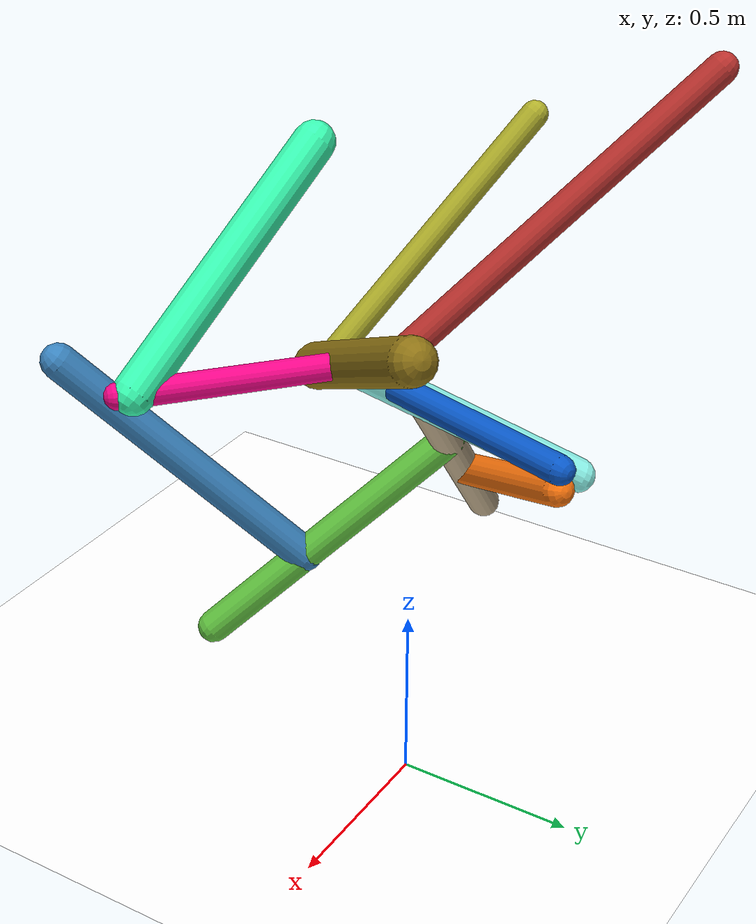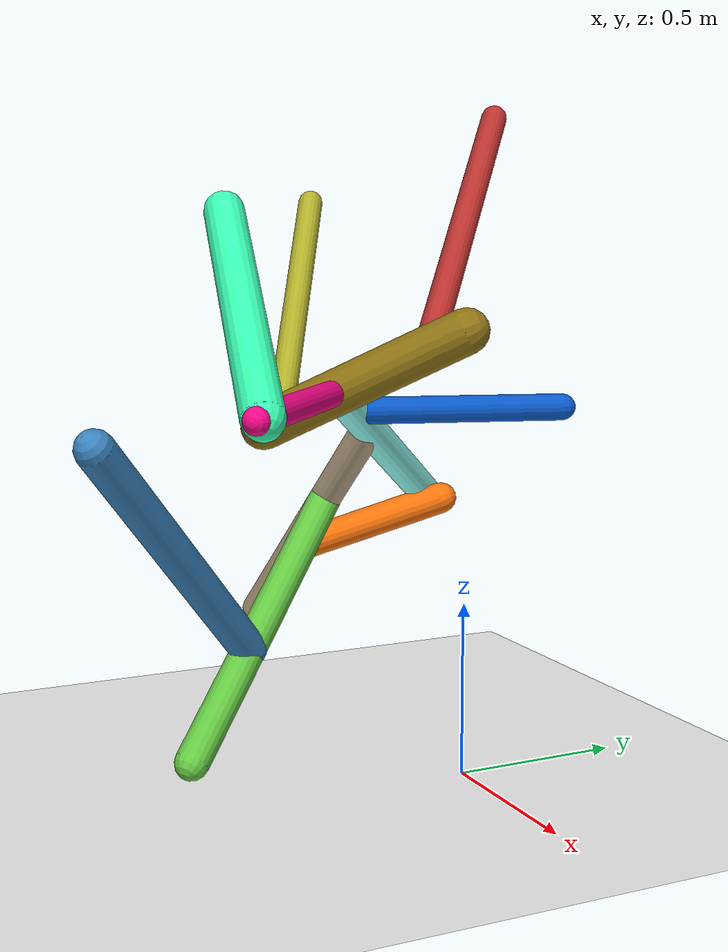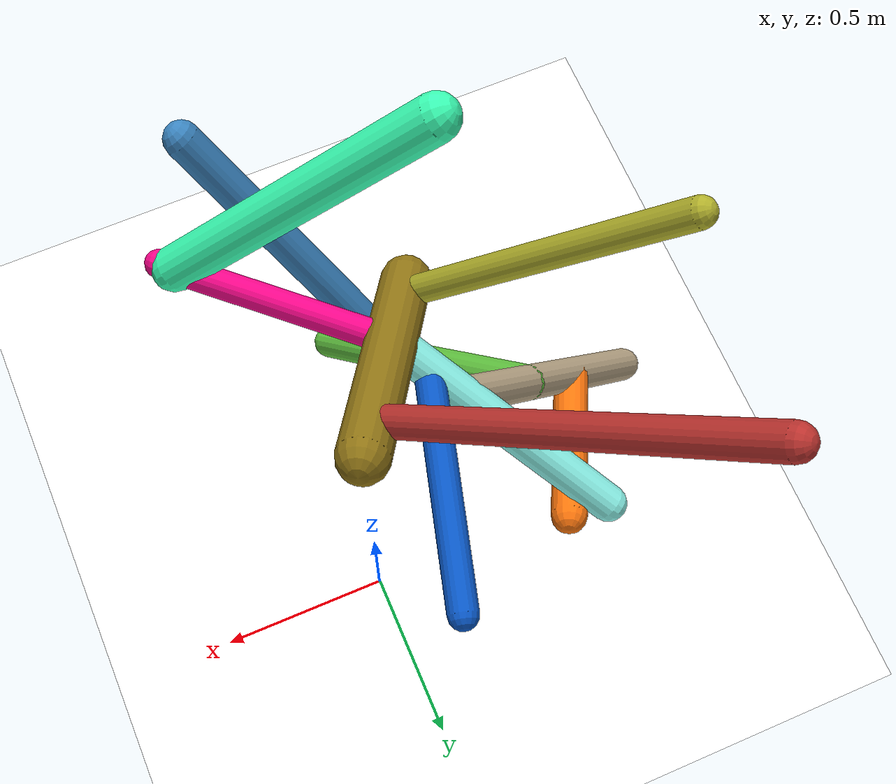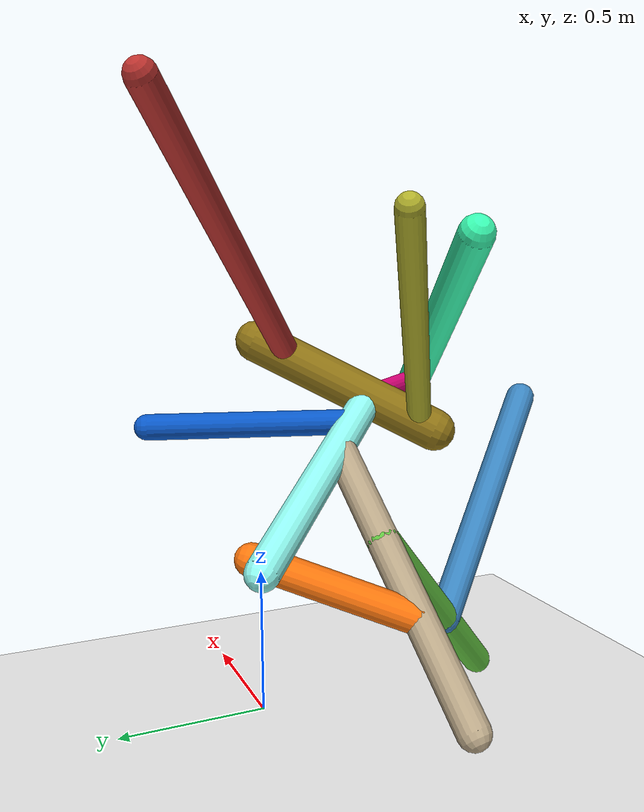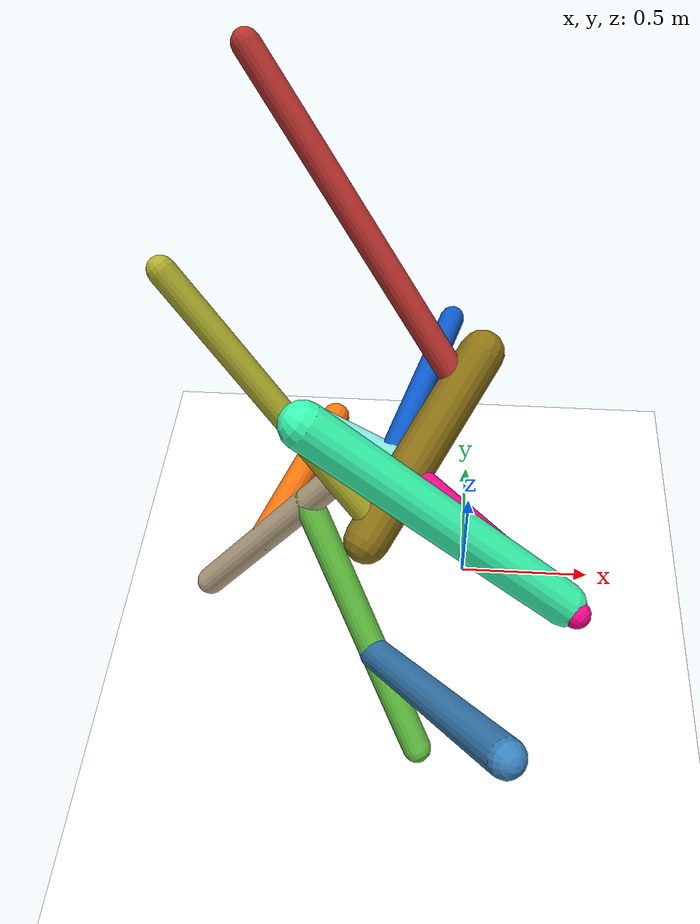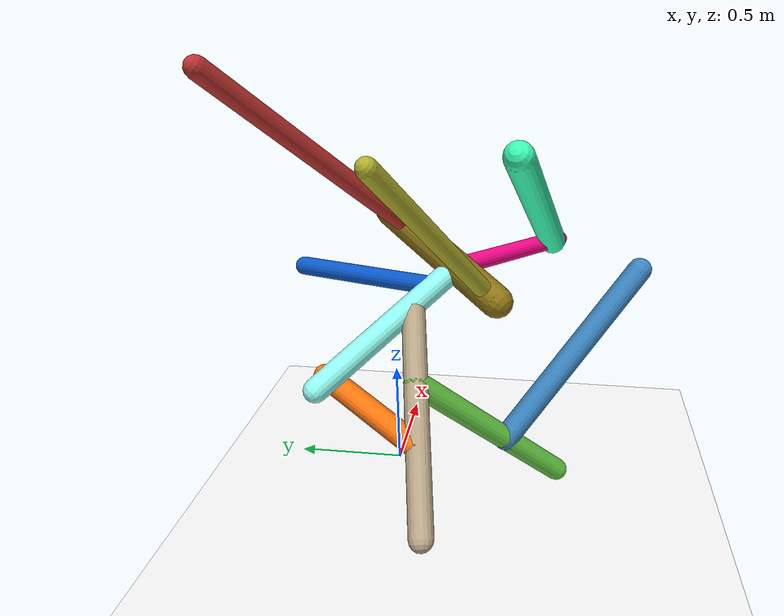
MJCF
<mujoco model="morphology">
  <option timestep="0.01"/>
  <default>
    <default class="/"/>
    <default class="0/"/>
    <default class="0/1/"/>
    <default class="0/2/"/>
    <default class="0/2/3/"/>
    <default class="0/2/3/4/"/>
    <default class="0/2/3/5/"/>
    <default class="0/2/3/5/6/"/>
    <default class="0/2/3/5/7/"/>
    <default class="0/2/3/5/7/8/"/>
    <default class="0/2/9/"/>
    <default class="0/10/"/>
  </default>
  <asset>
    <texture name="texplane" type="2d" builtin="checker" rgb1="0.10000000000000001 0.20000000000000001 0.29999999999999999" rgb2="0.20000000000000001 0.29999999999999999 0.40000000000000002" width="300" height="300"/>
    <material name="MatPlane" class="/" texture="texplane" texrepeat="20 20" specular="1" shininess="1" reflectance="0.5"/>
  </asset>
  <worldbody>
    <light name="//unnamed_light_0" class="/" directional="true" pos="0 0 1.5" dir="0 0 -1.3" cutoff="100" exponent="1" diffuse="1 1 1" specular="0.10000000000000001 0.10000000000000001 0.10000000000000001"/>
    <geom name="ground" class="/" type="plane" size="15 15 0.5" material="MatPlane" rgba="1 1 1 1"/>
    <site name="body" class="/" size="9.9999999999999995e-07 9.9999999999999995e-07 9.9999999999999995e-07" pos="0 0 1.2806426048278809"/>
    <body pos="0 0 1.2806426048278809" name="0/">
      <freejoint name="0/"/>
      <geom name="0/geom" class="0/" type="capsule" contype="1" conaffinity="1" condim="3" size="0.067290883719079625" rgba="0.55921885196480081 0.45321629731859148 0.082707748662700808 1" friction="0.59999999999999998 0.10000000000000001 0.10000000000000001" fromto="0 0 0 -0.30620686909280215 -0.48843616133035211 -0.27715190412401125"/>
      <site name="0/end0" class="0/" size="0.0050000000000000001" pos="-0.30620686909280215 -0.48843616133035211 -0.27715190412401125"/>
      <site name="0/attach1" class="0/" size="9.9999999999999995e-07 9.9999999999999995e-07 9.9999999999999995e-07" pos="-0.057149390646503311 -0.091160035280877252 -0.051726672507810413"/>
      <body pos="-0.057149390646503311 -0.091160035280877252 -0.051726672507810413" name="0/1/">
        <geom name="0/1/geom" class="0/1/" type="capsule" contype="1" conaffinity="1" condim="3" size="0.041430730111713249" rgba="0.73065617214850487 0.19637242294730983 0.18067693016740694 1" friction="0.59999999999999998 0.10000000000000001 0.10000000000000001" fromto="0 0 0 -0.61702208024551042 0.56896471852442376 0.70086644439197832"/>
        <site name="0/1/end1" class="0/1/" size="0.0050000000000000001" pos="-0.61702208024551042 0.56896471852442376 0.70086644439197832"/>
      </body>
      <site name="0/attach2" class="0/" size="9.9999999999999995e-07 9.9999999999999995e-07 9.9999999999999995e-07" pos="-0.19345301110620819 -0.30858042611015812 -0.1750968897120323"/>
      <body pos="-0.19345301110620819 -0.30858042611015812 -0.1750968897120323" name="0/2/">
        <joint name="0/2/joint/" class="0/" type="hinge" axis="0 1 0" limited="true" range="-50.170902470684311 50.170902470684311"/>
        <geom name="0/2/geom" class="0/2/" type="capsule" contype="1" conaffinity="1" condim="3" size="0.038305305108796789" rgba="0.96063892574412868 0.02086641070786166 0.53844088138134216 1" friction="0.59999999999999998 0.10000000000000001 0.10000000000000001" fromto="0 0 0 0.45910079280768201 -0.42590991299860137 -0.010377779003178489"/>
        <site name="0/2/end2" class="0/2/" size="0.0050000000000000001" pos="0.45910079280768201 -0.42590991299860137 -0.010377779003178489"/>
        <site name="0/2/attach3" class="0/2/" size="9.9999999999999995e-07 9.9999999999999995e-07 9.9999999999999995e-07" pos="0.0023486985226480479 -0.0021788984012058002 -5.3091335486636081e-05"/>
        <body pos="0.0023486985226480479 -0.0021788984012058002 -5.3091335486636081e-05" name="0/2/3/">
          <joint name="0/2/3/joint/" class="0/2/" type="hinge" axis="0.68021824666083963 0.7327921429015718 0.01785531325335242" limited="true" range="-50.824125025570822 50.824125025570822"/>
          <geom name="0/2/3/geom" class="0/2/3/" type="capsule" contype="1" conaffinity="1" condim="3" size="0.050511012277198765" rgba="0.56655710902216372 0.98856870348139858 0.94835705791223412 1" friction="0.59999999999999998 0.10000000000000001 0.10000000000000001" fromto="0 0 0 -0.40941847100381601 0.5071091092308555 -0.39196341175395172"/>
          <site name="0/2/3/end3" class="0/2/3/" size="0.0050000000000000001" pos="-0.40941847100381601 0.5071091092308555 -0.39196341175395172"/>
          <site name="0/2/3/attach4" class="0/2/3/" size="9.9999999999999995e-07 9.9999999999999995e-07 9.9999999999999995e-07" pos="-0.067644492685774105 0.083785028912230747 -0.064760551898094806"/>
          <body pos="-0.067644492685774105 0.083785028912230747 -0.064760551898094806" name="0/2/3/4/">
            <joint name="0/2/3/4/joint/" class="0/2/3/" type="hinge" axis="1.1102230246251565e-16 0.61155141216039977 0.79120469556532635" limited="true" range="-30.211758512721726 30.211758512721726"/>
            <geom name="0/2/3/4/geom" class="0/2/3/4/" type="capsule" contype="1" conaffinity="1" condim="3" size="0.039861051938930289" rgba="0.034417643877907245 0.34796765921144901 0.78784058712559613 1" friction="0.59999999999999998 0.10000000000000001 0.10000000000000001" fromto="0 0 0 0.16818730123114722 0.60654707367213079 0.00021744964870551442"/>
            <site name="0/2/3/4/end4" class="0/2/3/4/" size="0.0050000000000000001" pos="0.16818730123114722 0.60654707367213079 0.00021744964870551442"/>
          </body>
          <site name="0/2/3/attach5" class="0/2/3/" size="9.9999999999999995e-07 9.9999999999999995e-07 9.9999999999999995e-07" pos="-0.13148279483085992 0.16285567869564743 -0.12587718556637459"/>
          <body pos="-0.13148279483085992 0.16285567869564743 -0.12587718556637459" name="0/2/3/5/">
            <geom name="0/2/3/5/geom" class="0/2/3/5/" type="capsule" contype="1" conaffinity="1" condim="3" size="0.049187109354763753" rgba="0.72957066419437733 0.6554474769677322 0.53246311042871375 1" friction="0.59999999999999998 0.10000000000000001 0.10000000000000001" fromto="0 0 0 -0.60162180329325354 -0.12312447689634587 -0.6717036925660187"/>
            <site name="0/2/3/5/end5" class="0/2/3/5/" size="0.0050000000000000001" pos="-0.60162180329325354 -0.12312447689634587 -0.6717036925660187"/>
            <site name="0/2/3/5/attach6" class="0/2/3/5/" size="9.9999999999999995e-07 9.9999999999999995e-07 9.9999999999999995e-07" pos="-0.3814300132097837 -0.078061284667452727 -0.42586213951363633"/>
            <body pos="-0.3814300132097837 -0.078061284667452727 -0.42586213951363633" name="0/2/3/5/6/">
              <joint name="0/2/3/5/6/joint/" class="0/2/3/5/" type="hinge" axis="1.6653345369377348e-16 -0.98361206331846296 0.18029783385941101" limited="true" range="-49.241785597281194 49.241785597281194"/>
              <geom name="0/2/3/5/6/geom" class="0/2/3/5/6/" type="capsule" contype="1" conaffinity="1" condim="3" size="0.048906350145891613" rgba="0.99568893863580477 0.4650556341594666 0.048525795913250569 1" friction="0.59999999999999998 0.10000000000000001 0.10000000000000001" fromto="0 0 0 0.21494904948839988 0.41503496955474439 0.16438945321353038"/>
              <site name="0/2/3/5/6/end6" class="0/2/3/5/6/" size="0.0050000000000000001" pos="0.21494904948839988 0.41503496955474439 0.16438945321353038"/>
            </body>
            <site name="0/2/3/5/attach7" class="0/2/3/5/" size="9.9999999999999995e-07 9.9999999999999995e-07 9.9999999999999995e-07" pos="-0.21515011732190606 -0.044031392320624994 -0.24021258450085337"/>
            <body pos="-0.21515011732190606 -0.044031392320624994 -0.24021258450085337" name="0/2/3/5/7/">
              <geom name="0/2/3/5/7/geom" class="0/2/3/5/7/" type="capsule" contype="1" conaffinity="1" condim="3" size="0.049851325667195107" rgba="0.39505838153690265 0.79020491499694578 0.25993879126402164 1" friction="0.59999999999999998 0.10000000000000001 0.10000000000000001" fromto="0 0 0 0.39263008827144774 -0.58199553760764422 -0.63940279560248481"/>
              <site name="0/2/3/5/7/end7" class="0/2/3/5/7/" size="0.0050000000000000001" pos="0.39263008827144774 -0.58199553760764422 -0.63940279560248481"/>
              <site name="0/2/3/5/7/attach8" class="0/2/3/5/7/" size="9.9999999999999995e-07 9.9999999999999995e-07 9.9999999999999995e-07" pos="0.23600995087588442 -0.34983752479458846 -0.38434502827943234"/>
              <body pos="0.23600995087588442 -0.34983752479458846 -0.38434502827943234" name="0/2/3/5/7/8/">
                <joint name="0/2/3/5/7/8/joint/" class="0/2/3/5/7/" type="hinge" axis="0.91051541743659858 0.27832199985922007 0.30577530803618003" limited="true" range="-62.583801903349695 62.583801903349695"/>
                <geom name="0/2/3/5/7/8/geom" class="0/2/3/5/7/8/" type="capsule" contype="1" conaffinity="1" condim="3" size="0.052982076677266315" rgba="0.2277147879558894 0.51881723554455761 0.75016100012591191 1" friction="0.59999999999999998 0.10000000000000001 0.10000000000000001" fromto="0 0 0 0.39080610765663715 -0.55219811222433102 0.66836320276785344"/>
                <site name="0/2/3/5/7/8/end8" class="0/2/3/5/7/8/" size="0.0050000000000000001" pos="0.39080610765663715 -0.55219811222433102 0.66836320276785344"/>
              </body>
            </body>
          </body>
        </body>
        <site name="0/2/attach9" class="0/2/" size="9.9999999999999995e-07 9.9999999999999995e-07 9.9999999999999995e-07" pos="0.42872069838342741 -0.39772615994081956 -0.0096910498339638339"/>
        <body pos="0.42872069838342741 -0.39772615994081956 -0.0096910498339638339" name="0/2/9/">
          <geom name="0/2/9/geom" class="0/2/9/" type="capsule" contype="1" conaffinity="1" condim="3" size="0.059579043529356557" rgba="0.22159416958195466 0.99705216669084296 0.7013038971683242 1" friction="0.59999999999999998 0.10000000000000001 0.10000000000000001" fromto="0 0 0 -0.65242779689605901 0.14486484537535271 0.51940247610432633"/>
          <site name="0/2/9/end9" class="0/2/9/" size="0.0050000000000000001" pos="-0.65242779689605901 0.14486484537535271 0.51940247610432633"/>
        </body>
      </body>
      <site name="0/attach10" class="0/" size="9.9999999999999995e-07 9.9999999999999995e-07 9.9999999999999995e-07" pos="-0.28136527163169572 -0.44881087617210397 -0.2546674443265361"/>
      <body pos="-0.28136527163169572 -0.44881087617210397 -0.2546674443265361" name="0/10/">
        <joint name="0/10/joint/" class="0/" type="hinge" axis="0 1 0" limited="true" range="-57.931538925701147 57.931538925701147"/>
        <geom name="0/10/geom" class="0/10/" type="capsule" contype="1" conaffinity="1" condim="3" size="0.038333892563032573" rgba="0.69223518802138251 0.68717925728043727 0.16852544406393122 1" friction="0.59999999999999998 0.10000000000000001 0.10000000000000001" fromto="0 0 0 -0.55310048427159764 0.33845132595181382 0.62721223518301938"/>
        <site name="0/10/end10" class="0/10/" size="0.0050000000000000001" pos="-0.55310048427159764 0.33845132595181382 0.62721223518301938"/>
      </body>
      <camera name="0/iso" class="0/" mode="trackcom" pos="-2.2999999999999998 -2.2999999999999998 1" xyaxes="0.45000000000000001 -0.45000000000000001 0 0.29999999999999999 0.14999999999999999 0.93999999999999995"/>
    </body>
  </worldbody>
  <actuator>
    <motor name="0/2/motor" class="0/2/" ctrllimited="true" ctrlrange="-1 1" gear="51" joint="0/2/joint/"/>
    <motor name="0/2/3/motor" class="0/2/3/" ctrllimited="true" ctrlrange="-1 1" gear="57" joint="0/2/3/joint/"/>
    <motor name="0/2/3/4/motor" class="0/2/3/4/" ctrllimited="true" ctrlrange="-1 1" gear="95" joint="0/2/3/4/joint/"/>
    <motor name="0/2/3/5/6/motor" class="0/2/3/5/6/" ctrllimited="true" ctrlrange="-1 1" gear="54" joint="0/2/3/5/6/joint/"/>
    <motor name="0/2/3/5/7/8/motor" class="0/2/3/5/7/8/" ctrllimited="true" ctrlrange="-1 1" gear="63" joint="0/2/3/5/7/8/joint/"/>
    <motor name="0/10/motor" class="0/10/" ctrllimited="true" ctrlrange="-1 1" gear="90" joint="0/10/joint/"/>
  </actuator>
  <sensor>
    <subtreelinvel name="velocity" body="0/"/>
  </sensor>
</mujoco>
